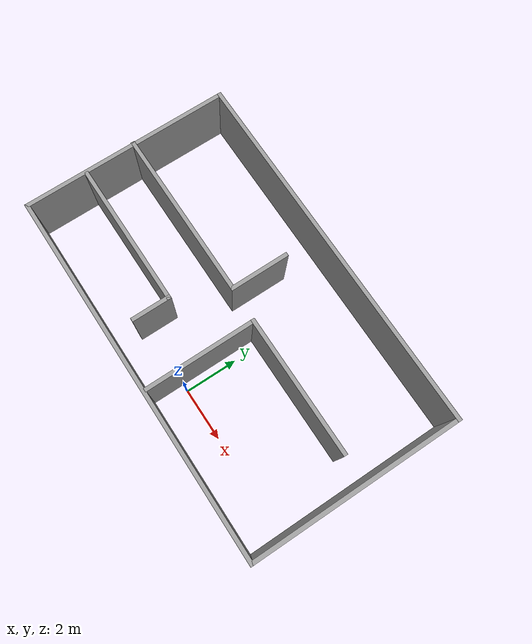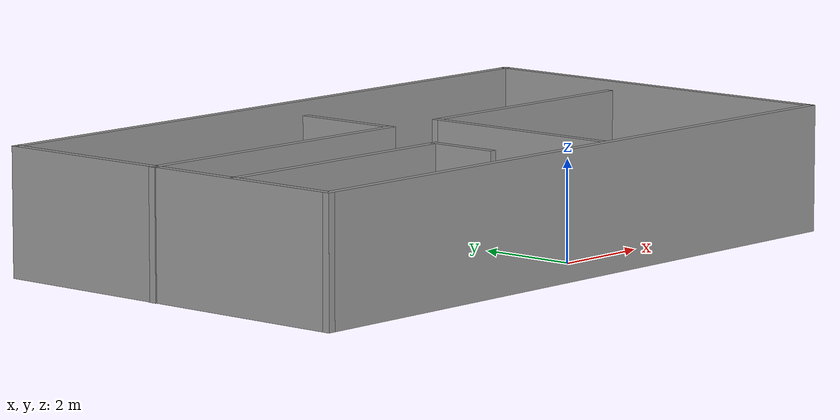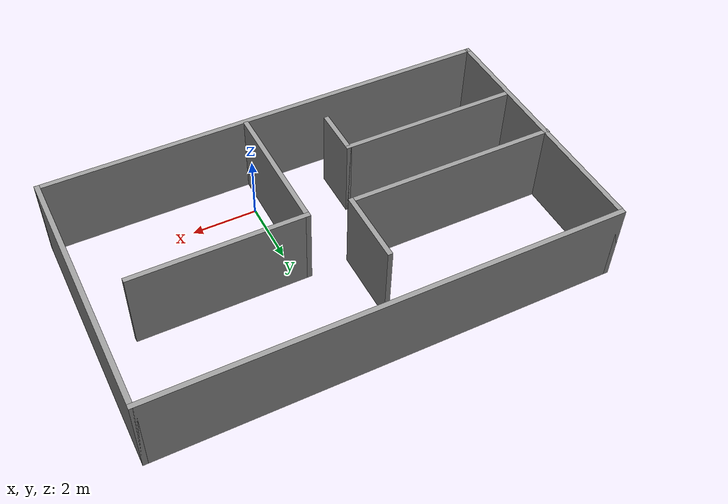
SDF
<?xml version='1.0'?>
<sdf version='1.7'>
  <model name='room'>
    <pose>-1.07812 2.67896 0 0 -0 0</pose>
    <link name='Wall_0'>
      <collision name='Wall_0_Collision'>
        <geometry>
          <box>
            <size>14 0.15 2.5</size>
          </box>
        </geometry>
        <pose>0 0 1.25 0 -0 0</pose>
      </collision>
      <visual name='Wall_0_Visual'>
        <pose>0 0 1.25 0 -0 0</pose>
        <geometry>
          <box>
            <size>14 0.15 2.5</size>
          </box>
        </geometry>
        <material>
          <script>
            <uri>file://media/materials/scripts/gazebo.material</uri>
            <name>Gazebo/Grey</name>
          </script>
          <ambient>1 1 1 1</ambient>
        </material>
        <meta>
          <layer>0</layer>
        </meta>
      </visual>
      <pose>0.012681 3.925 0 0 -0 0</pose>
    </link>
    <link name='Wall_10'>
      <collision name='Wall_10_Collision'>
        <geometry>
          <box>
            <size>5.5 0.15 2.5</size>
          </box>
        </geometry>
        <pose>0 0 1.25 0 -0 0</pose>
      </collision>
      <visual name='Wall_10_Visual'>
        <pose>0 0 1.25 0 -0 0</pose>
        <geometry>
          <box>
            <size>5.5 0.15 2.5</size>
          </box>
        </geometry>
        <material>
          <script>
            <uri>file://media/materials/scripts/gazebo.material</uri>
            <name>Gazebo/Grey</name>
          </script>
          <ambient>1 1 1 1</ambient>
        </material>
        <meta>
          <layer>0</layer>
        </meta>
      </visual>
      <pose>-4.15622 -1.61216 0 0 -0 0</pose>
    </link>
    <link name='Wall_11'>
      <collision name='Wall_11_Collision'>
        <geometry>
          <box>
            <size>1.5 0.15 2.5</size>
          </box>
        </geometry>
        <pose>0 0 1.25 0 -0 0</pose>
      </collision>
      <visual name='Wall_11_Visual'>
        <pose>0 0 1.25 0 -0 0</pose>
        <geometry>
          <box>
            <size>1.5 0.15 2.5</size>
          </box>
        </geometry>
        <material>
          <script>
            <uri>file://media/materials/scripts/gazebo.material</uri>
            <name>Gazebo/Grey</name>
          </script>
          <ambient>1 1 1 1</ambient>
        </material>
        <meta>
          <layer>0</layer>
        </meta>
      </visual>
      <pose>-1.48122 -2.28716 0 0 -0 -1.5708</pose>
    </link>
    <link name='Wall_14'>
      <collision name='Wall_14_Collision'>
        <geometry>
          <box>
            <size>4.25 0.15 2.5</size>
          </box>
        </geometry>
        <pose>0 0 1.25 0 -0 0</pose>
      </collision>
      <visual name='Wall_14_Visual'>
        <pose>0 0 1.25 0 -0 0</pose>
        <geometry>
          <box>
            <size>4.25 0.15 2.5</size>
          </box>
        </geometry>
        <material>
          <script>
            <uri>file://media/materials/scripts/gazebo.material</uri>
            <name>Gazebo/Grey</name>
          </script>
          <ambient>1 1 1 1</ambient>
        </material>
        <meta>
          <layer>0</layer>
        </meta>
      </visual>
      <pose>0.726237 -1.76106 0 0 -0 -1.5708</pose>
    </link>
    <link name='Wall_16'>
      <collision name='Wall_16_Collision'>
        <geometry>
          <box>
            <size>5.25 0.15 2.5</size>
          </box>
        </geometry>
        <pose>0 0 1.25 0 -0 0</pose>
      </collision>
      <visual name='Wall_16_Visual'>
        <pose>0 0 1.25 0 -0 0</pose>
        <geometry>
          <box>
            <size>5.25 0.15 2.5</size>
          </box>
        </geometry>
        <material>
          <script>
            <uri>file://media/materials/scripts/gazebo.material</uri>
            <name>Gazebo/Grey</name>
          </script>
          <ambient>1 1 1 1</ambient>
        </material>
        <meta>
          <layer>0</layer>
        </meta>
      </visual>
      <pose>3.27624 0.288938 0 0 -0 0</pose>
    </link>
    <link name='Wall_2'>
      <collision name='Wall_2_Collision'>
        <geometry>
          <box>
            <size>8 0.15 2.5</size>
          </box>
        </geometry>
        <pose>0 0 1.25 0 -0 0</pose>
      </collision>
      <visual name='Wall_2_Visual'>
        <pose>0 0 1.25 0 -0 0</pose>
        <geometry>
          <box>
            <size>8 0.15 2.5</size>
          </box>
        </geometry>
        <material>
          <script>
            <uri>file://media/materials/scripts/gazebo.material</uri>
            <name>Gazebo/Grey</name>
          </script>
          <ambient>1 1 1 1</ambient>
        </material>
        <meta>
          <layer>0</layer>
        </meta>
      </visual>
      <pose>6.93768 0 0 0 -0 -1.5708</pose>
    </link>
    <link name='Wall_21'>
      <collision name='Wall_21_Collision'>
        <geometry>
          <box>
            <size>6.5 0.15 2.5</size>
          </box>
        </geometry>
        <pose>0 0 1.25 0 -0 0</pose>
      </collision>
      <visual name='Wall_21_Visual'>
        <pose>0 0 1.25 0 -0 0</pose>
        <geometry>
          <box>
            <size>6.5 0.15 2.5</size>
          </box>
        </geometry>
        <material>
          <script>
            <uri>file://media/materials/scripts/gazebo.material</uri>
            <name>Gazebo/Grey</name>
          </script>
          <ambient>1 1 1 1</ambient>
        </material>
        <meta>
          <layer>0</layer>
        </meta>
      </visual>
      <pose>-3.76268 0.33465 0 0 -0 3.14159</pose>
    </link>
    <link name='Wall_3'>
      <collision name='Wall_3_Collision'>
        <geometry>
          <box>
            <size>14 0.15 2.5</size>
          </box>
        </geometry>
        <pose>0 0 1.25 0 -0 0</pose>
      </collision>
      <visual name='Wall_3_Visual'>
        <pose>0 0 1.25 0 -0 0</pose>
        <geometry>
          <box>
            <size>14 0.15 2.5</size>
          </box>
        </geometry>
        <material>
          <script>
            <uri>file://media/materials/scripts/gazebo.material</uri>
            <name>Gazebo/Grey</name>
          </script>
          <ambient>1 1 1 1</ambient>
        </material>
        <meta>
          <layer>0</layer>
        </meta>
      </visual>
      <pose>0.012681 -3.925 0 0 -0 3.14159</pose>
    </link>
    <link name='Wall_4'>
      <collision name='Wall_4_Collision'>
        <geometry>
          <box>
            <size>8 0.15 2.5</size>
          </box>
        </geometry>
        <pose>0 0 1.25 0 -0 0</pose>
      </collision>
      <visual name='Wall_4_Visual'>
        <pose>0 0 1.25 0 -0 0</pose>
        <geometry>
          <box>
            <size>8 0.15 2.5</size>
          </box>
        </geometry>
        <material>
          <script>
            <uri>file://media/materials/scripts/gazebo.material</uri>
            <name>Gazebo/Grey</name>
          </script>
          <ambient>1 1 1 1</ambient>
        </material>
        <meta>
          <layer>0</layer>
        </meta>
      </visual>
      <pose>-6.91232 0 0 0 -0 1.5708</pose>
    </link>
    <link name='Wall_8'>
      <collision name='Wall_8_Collision'>
        <geometry>
          <box>
            <size>2.26512 0.15 2.5</size>
          </box>
        </geometry>
        <pose>0 0 1.25 0 -0 0</pose>
      </collision>
      <visual name='Wall_8_Visual'>
        <pose>0 0 1.25 0 -0 0</pose>
        <geometry>
          <box>
            <size>2.26512 0.15 2.5</size>
          </box>
        </geometry>
        <material>
          <script>
            <uri>file://media/materials/scripts/gazebo.material</uri>
            <name>Gazebo/Grey</name>
          </script>
          <ambient>1 1 1 1</ambient>
        </material>
        <meta>
          <layer>0</layer>
        </meta>
      </visual>
      <pose>-0.587682 1.39221 0 0 -0 1.5708</pose>
    </link>
    <static>1</static>
  </model>
</sdf>
